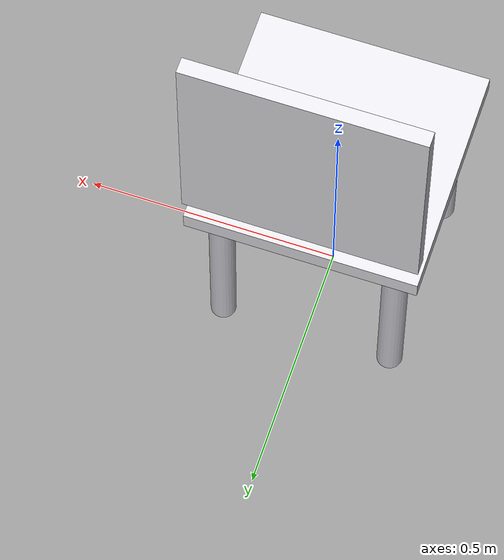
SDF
<?xml version="1.0"?>
<sdf version="1.10">
  <model name="exam_chair">
    <static>true</static>

    <link name="chair">

      <!-- Inertia -->
      <inertial>
        <mass>3</mass>
        <inertia>
          <ixx>0.1</ixx><iyy>0.1</iyy><izz>0.1</izz>
        </inertia>
      </inertial>

      <!-- SEAT -->
      <visual name="seat">
        <pose>0 0 0.45 0 0 0</pose>
        <geometry>
          <box><size>0.45 0.45 0.04</size></box>
        </geometry>
        <material>
          <diffuse>0.9 0.9 0.92 1</diffuse>
          <specular>0.3 0.3 0.35 1</specular>
        </material>
      </visual>

      <collision name="seat_col">
        <pose>0 0 0.45 0 0 0</pose>
        <geometry><box><size>0.45 0.45 0.04</size></box></geometry>
      </collision>

      <!-- BACKREST -->

      <visual name="back">
        <pose>0 0.215 0.78 0 0 0</pose>
        <geometry>
          <box><size>0.45 0.03 0.50</size></box>
        </geometry>
        <material>
          <diffuse>0.9 0.9 0.92 1</diffuse>
          <specular>0.3 0.3 0.35 1</specular>
        </material>
      </visual>

      <collision name="back_col">
        <pose>0 0.215 0.78 0 0 0</pose>
        <geometry>
          <box><size>0.45 0.03 0.50</size></box>
        </geometry>
      </collision>

      <!-- LEGS -->
      <visual name="leg1"><pose>-0.17 -0.17 0.225 0 0 0</pose><geometry><cylinder><radius>0.025</radius><length>0.45</length></cylinder></geometry><material><diffuse>0.85 0.85 0.88 1</diffuse></material></visual>
      <visual name="leg2"><pose> 0.17 -0.17 0.225 0 0 0</pose><geometry><cylinder><radius>0.025</radius><length>0.45</length></cylinder></geometry><material><diffuse>0.85 0.85 0.88 1</diffuse></material></visual>
      <visual name="leg3"><pose>-0.17  0.17 0.225 0 0 0</pose><geometry><cylinder><radius>0.025</radius><length>0.45</length></cylinder></geometry><material><diffuse>0.85 0.85 0.88 1</diffuse></material></visual>
      <visual name="leg4"><pose> 0.17  0.17 0.225 0 0 0</pose><geometry><cylinder><radius>0.025</radius><length>0.45</length></cylinder></geometry><material><diffuse>0.85 0.85 0.88 1</diffuse></material></visual>

      <collision name="leg1_col"><pose>-0.17 -0.17 0.225 0 0 0</pose><geometry><cylinder><radius>0.025</radius><length>0.45</length></cylinder></geometry></collision>
      <collision name="leg2_col"><pose> 0.17 -0.17 0.225 0 0 0</pose><geometry><cylinder><radius>0.025</radius><length>0.45</length></cylinder></geometry></collision>
      <collision name="leg3_col"><pose>-0.17  0.17 0.225 0 0 0</pose><geometry><cylinder><radius>0.025</radius><length>0.45</length></cylinder></geometry></collision>
      <collision name="leg4_col"><pose> 0.17  0.17 0.225 0 0 0</pose><geometry><cylinder><radius>0.025</radius><length>0.45</length></cylinder></geometry></collision>

    </link>
  </model>
</sdf>
